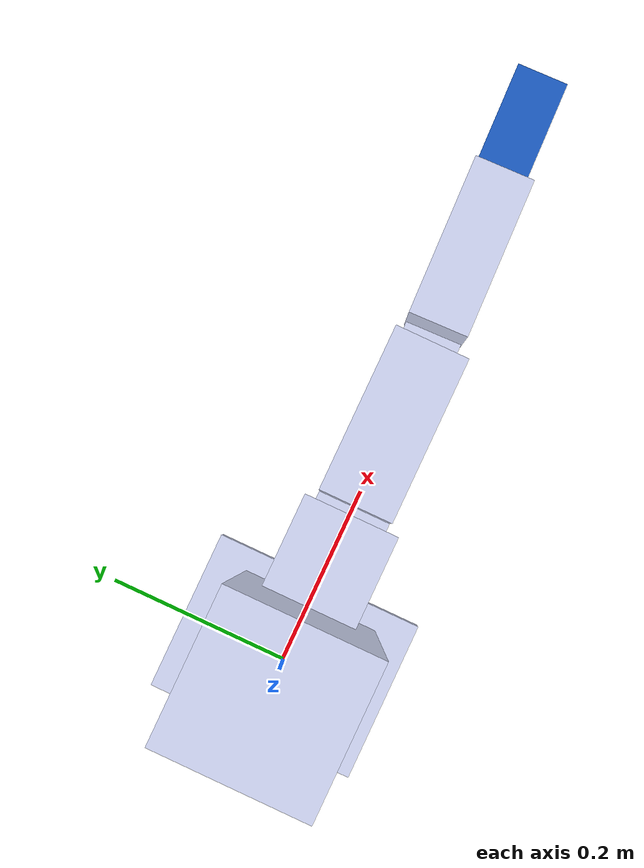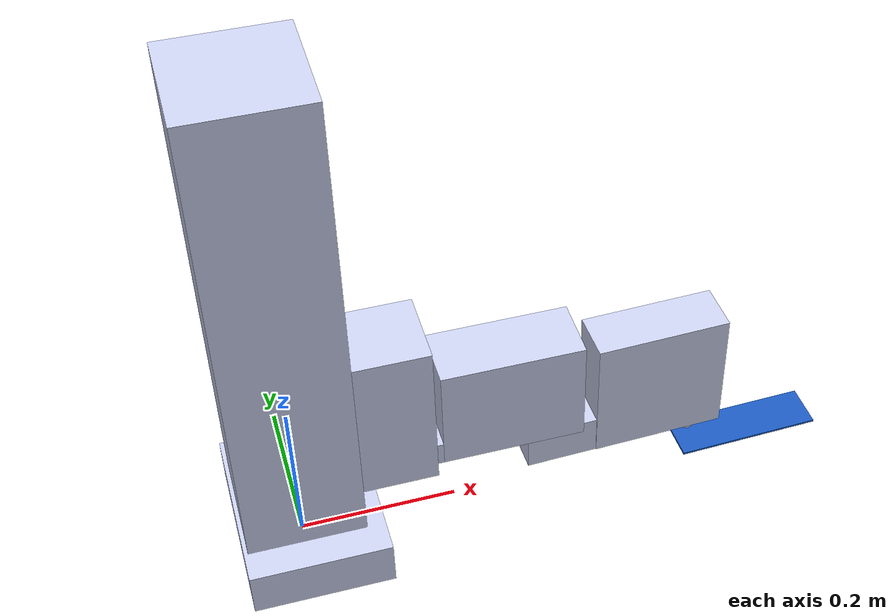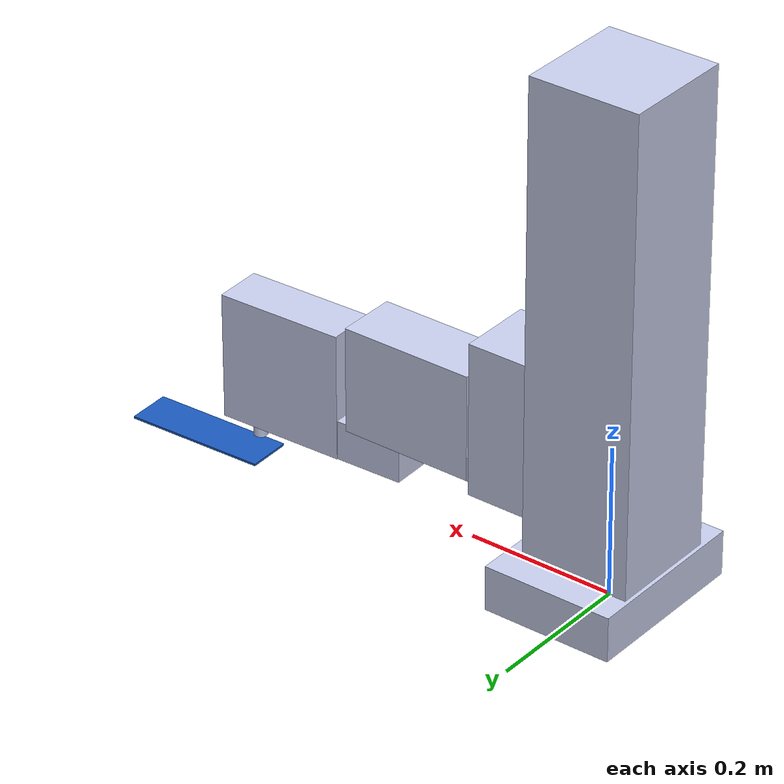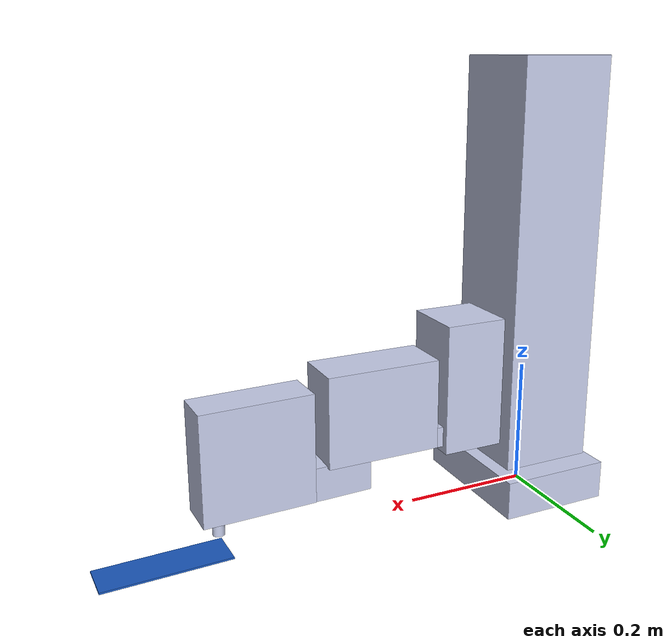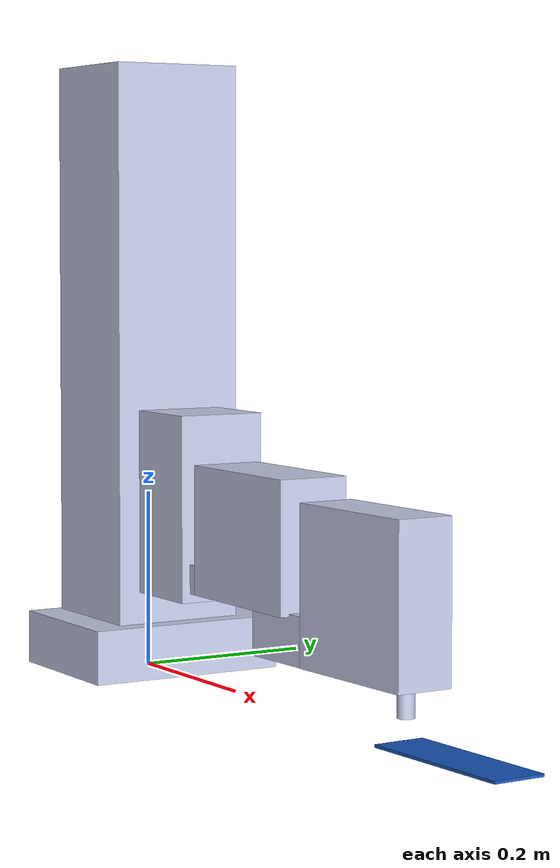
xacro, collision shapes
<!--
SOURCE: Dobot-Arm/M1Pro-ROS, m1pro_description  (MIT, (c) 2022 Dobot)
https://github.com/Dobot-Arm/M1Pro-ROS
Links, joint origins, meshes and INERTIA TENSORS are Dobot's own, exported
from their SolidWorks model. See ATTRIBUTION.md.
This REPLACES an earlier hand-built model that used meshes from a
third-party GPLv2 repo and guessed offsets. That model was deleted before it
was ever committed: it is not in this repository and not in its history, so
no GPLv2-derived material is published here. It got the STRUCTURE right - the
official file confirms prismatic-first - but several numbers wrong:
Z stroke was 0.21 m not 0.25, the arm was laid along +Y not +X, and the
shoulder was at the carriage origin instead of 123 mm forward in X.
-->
<?xml version="1.0"?>
<!-- Modifications Copyright (c) 2026 Jatin Satyam, SPDX-License-Identifier: Apache-2.0.
     Derived from Dobot's m1pro_description (MIT License, Copyright (c) 2022 Dobot); see ATTRIBUTION.md. -->
<robot xmlns:xacro="http://www.ros.org/wiki/xacro" name="dobot_m1pro">

  <xacro:arg name="prefix" default="m1pro_"/>
  <xacro:property name="prefix" value="$(arg prefix)"/>
  <xacro:arg name="fix_to_world" default="true"/>
  <xacro:arg name="use_gz_control" default="true"/>
  <xacro:arg name="controllers_file"
             default="$(find dobot_m1pro_description)/config/m1pro_controllers.yaml"/>
  <xacro:property name="mesh_dir" value="package://dobot_m1pro_description/meshes"/>

  <xacro:if value="$(arg fix_to_world)">
    <link name="world"/>
    <joint name="${prefix}world_fixed" type="fixed">
      <parent link="world"/><child link="${prefix}base_link"/>
      <origin xyz="0 0 0"/>
    </joint>
  </xacro:if>

  <link name="${prefix}base_link">
    <inertial>
      <origin xyz="0.0020887 0.24592 -9.2948E-06" rpy="0 0 0"/>
      <mass value="1.6489"/>
      <inertia ixx="0.090971" ixy="0.002094" ixz="-4.8449E-06" iyy="0.009863" iyz="1.4427E-05" izz="0.089585"/>
    </inertial>
    <visual>
      <origin xyz="0 0 0" rpy="0 0 0"/>
      <geometry>
        <mesh filename="${mesh_dir}/base_link.STL"/>
      </geometry>
      <material name="">
        <color rgba="0.79216 0.81961 0.93333 1"/>
      </material>
    </visual>
    <collision>
      <origin xyz="0.0075 0 0.030" rpy="0 0 0"/>
      <geometry><box size="0.175 0.230 0.060"/></geometry>
    </collision>
    <collision>
      <origin xyz="-0.0015 0 0.374" rpy="0 0 0"/>
      <geometry><box size="0.147 0.150 0.628"/></geometry>
    </collision>
  </link>
  <link name="${prefix}z_carriage_link">
    <inertial>
      <origin xyz="0.096709 6.1822E-05 0.090051" rpy="0 0 0"/>
      <mass value="0.34234"/>
      <inertia ixx="0.0016183" ixy="1.9963E-06" ixz="-0.00029873" iyy="0.0016941" iyz="8.0481E-07" izz="0.00088121"/>
    </inertial>
    <visual>
      <origin xyz="0 0 0" rpy="0 0 0"/>
      <geometry>
        <mesh filename="${mesh_dir}/Link1.STL"/>
      </geometry>
      <material name="">
        <color rgba="0.79216 0.81961 0.93333 1"/>
      </material>
    </visual>
    <collision>
      <origin xyz="0.108 0 0.1025" rpy="0 0 0"/>
      <geometry><box size="0.130 0.100 0.205"/></geometry>
    </collision>
  </link>
  <link name="${prefix}upper_arm_link">
    <inertial>
      <origin xyz="0.11428 -2.1681E-05 0.038255" rpy="0 0 0"/>
      <mass value="0.37995"/>
      <inertia ixx="0.00096644" ixy="2.2955E-06" ixz="-0.00059955" iyy="0.0031741" iyz="-2.4057E-09" izz="0.0027963"/>
    </inertial>
    <visual>
      <origin xyz="0 0 0" rpy="0 0 0"/>
      <geometry>
        <mesh filename="${mesh_dir}/Link2.STL"/>
      </geometry>
      <material name="">
        <color rgba="0.79216 0.81961 0.93333 1"/>
      </material>
    </visual>
    <!-- root plate x -0.04..0.06 z 0..0.032; housing x 0.06..0.24 z 0..0.142 -->
    <collision>
      <origin xyz="0.010 0 0.016" rpy="0 0 0"/>
      <geometry><box size="0.100 0.080 0.032"/></geometry>
    </collision>
    <collision>
      <origin xyz="0.150 0 0.071" rpy="0 0 0"/>
      <geometry><box size="0.180 0.080 0.142"/></geometry>
    </collision>
  </link>
  <link name="${prefix}forearm_link">
    <inertial>
      <origin xyz="0.097934 0.00036211 0.0056251" rpy="0 0 0"/>
      <mass value="0.33738"/>
      <inertia ixx="0.00099637" ixy="-1.0881E-06" ixz="-0.00074781" iyy="0.003254" iyz="-3.8055E-07" izz="0.0025681"/>
    </inertial>
    <visual>
      <origin xyz="0 0 0" rpy="0 0 0"/>
      <geometry>
        <mesh filename="${mesh_dir}/Link3.STL"/>
      </geometry>
      <material name="">
        <color rgba="0.79216 0.81961 0.93333 1"/>
      </material>
    </visual>
    <!-- elbow plate x -0.031..0.06 z -0.05..0.003; housing x 0.06..0.231 z -0.05..0.12 -->
    <collision>
      <origin xyz="0.0145 0 -0.0235" rpy="0 0 0"/>
      <geometry><box size="0.091 0.062 0.053"/></geometry>
    </collision>
    <collision>
      <origin xyz="0.1455 0 0.035" rpy="0 0 0"/>
      <geometry><box size="0.171 0.064 0.170"/></geometry>
    </collision>
  </link>
  <link name="${prefix}wrist_link">
    <inertial>
      <origin xyz="3.505E-13 -1.5772E-11 -0.038921" rpy="0 0 0"/>
      <mass value="0.010941"/>
      <inertia ixx="7.2568E-06" ixy="4.4734E-21" ixz="6.1388E-17" iyy="7.2589E-06" iyz="-4.5944E-15" izz="4.4133E-07"/>
    </inertial>
    <visual>
      <origin xyz="0 0 0.08081" rpy="0 0 0"/>
      <geometry>
        <mesh filename="${mesh_dir}/Link4.STL"/>
      </geometry>
      <material name="">
        <color rgba="0.79216 0.81961 0.93333 1"/>
      </material>
    </visual>
    <!-- VENDOR DEFECT FIXED: shipped as origin "0 0 0" while the visual above
         carries "0 0 0.08081", so the wrist's collision shape sat 81 mm below
         where it renders. -->
    <collision>
      <!-- the wrist shaft: mesh z -0.081..0.007 plus the 0.08081 offset -->
      <origin xyz="0 0 0.044" rpy="0 0 0"/>
      <geometry><cylinder radius="0.009" length="0.088"/></geometry>
    </collision>
  </link>
  <joint name="${prefix}z_lift" type="prismatic">
    <origin xyz="-0.003 0 0.0959" rpy="0 0 0"/>
    <parent link="${prefix}base_link"/>
    <child link="${prefix}z_carriage_link"/>
    <axis xyz="0 0 1"/>
    <limit lower="0.000000" upper="0.250000" effort="2000.0" velocity="0.5"/>
    <dynamics damping="1.0" friction="0.5"/>
  </joint>
  <joint name="${prefix}shoulder" type="revolute">
    <origin xyz="0.123 0 0.0099745" rpy="0 0 0"/>
    <parent link="${prefix}z_carriage_link"/>
    <child link="${prefix}upper_arm_link"/>
    <axis xyz="0 0 1"/>
    <limit lower="-1.483530" upper="1.483530" effort="204.0" velocity="3.14"/>
    <dynamics damping="1.0" friction="0.5"/>
  </joint>
  <joint name="${prefix}elbow" type="revolute">
    <origin xyz="0.2 0 0" rpy="0 0 0.034228"/>
    <parent link="${prefix}upper_arm_link"/>
    <child link="${prefix}forearm_link"/>
    <axis xyz="0 0 -1"/>
    <limit lower="-2.356194" upper="2.356194" effort="204.0" velocity="3.14"/>
    <dynamics damping="1.0" friction="0.5"/>
  </joint>
  <joint name="${prefix}wrist" type="revolute">
    <origin xyz="0.2 0.00020895 -0.08081" rpy="0 0 0"/>
    <parent link="${prefix}forearm_link"/>
    <child link="${prefix}wrist_link"/>
    <axis xyz="0 0 1"/>
    <limit lower="-6.283185" upper="6.283185" effort="20.0" velocity="6.0"/>
    <dynamics damping="1.0" friction="0.5"/>
  </joint>
  <!-- TCP at the wrist output face. -->
  <link name="${prefix}tcp"/>
  <joint name="${prefix}tcp_fixed" type="fixed">
    <parent link="${prefix}wrist_link"/><child link="${prefix}tcp"/>
    <origin xyz="0 0 0"/>
  </joint>

  <link name="${prefix}fork">
    <visual>
      <origin xyz="0 0 -0.0250" rpy="1.5708 0 1.5708"/>
      <geometry><mesh filename="package://wafer_cell_bringup/meshes/m1pro_fork.stl"
                      scale="0.001 0.001 0.001"/></geometry>
      <material name="fork_blue"><color rgba="0.10 0.35 0.75 1"/></material>
    </visual>
    <collision>
      <origin xyz="0.0823 0 -0.0265" rpy="0 0 0"/>
      <geometry><box size="0.1895 0.0582 0.003"/></geometry>
    </collision>
    <inertial>
      <origin xyz="0.0823 0 -0.0265"/>
      <mass value="0.08"/>
      <inertia ixx="2.3e-5" ixy="0" ixz="0" iyy="2.4e-4" iyz="0" izz="2.6e-4"/>
    </inertial>
  </link>
  <joint name="${prefix}fork_fixed" type="fixed">
    <parent link="${prefix}tcp"/><child link="${prefix}fork"/>
    <origin xyz="0 0 0"/>
  </joint>

  <link name="${prefix}fork_seat"/>
  <joint name="${prefix}fork_seat_fixed" type="fixed">
    <parent link="${prefix}fork"/><child link="${prefix}fork_seat"/>
    <origin xyz="0.1470 0 -0.0250"/>
  </joint>

  <xacro:if value="$(arg use_gz_control)">
  <ros2_control name="${prefix}system" type="system">
    <hardware><plugin>gz_ros2_control/GazeboSimSystem</plugin></hardware>
    <xacro:macro name="j" params="name lo hi init">
      <joint name="${name}">
        <command_interface name="position">
          <param name="min">${lo}</param><param name="max">${hi}</param>
        </command_interface>
        <!-- never initialise AT a limit: it latches and ignores all commands -->
        <state_interface name="position"><param name="initial_value">${init}</param></state_interface>
        <state_interface name="velocity"/>
        <state_interface name="effort"/>
      </joint>
    </xacro:macro>
    <xacro:j name="${prefix}z_lift"   lo="0.0"      hi="0.25"    init="0.125"/>
    <xacro:j name="${prefix}shoulder" lo="-1.483530" hi="1.483530" init="0.0"/>
    <xacro:j name="${prefix}elbow"    lo="-2.356194" hi="2.356194" init="0.0"/>
    <xacro:j name="${prefix}wrist"    lo="-6.283185" hi="6.283185" init="0.0"/>
  </ros2_control>

  <gazebo>
    <plugin filename="gz_ros2_control-system"
            name="gz_ros2_control::GazeboSimROS2ControlPlugin">
      <parameters>$(arg controllers_file)</parameters>
      <ros>
        <namespace>/m1pro</namespace>
      </ros>
    </plugin>
  </gazebo>
  </xacro:if>

</robot>
